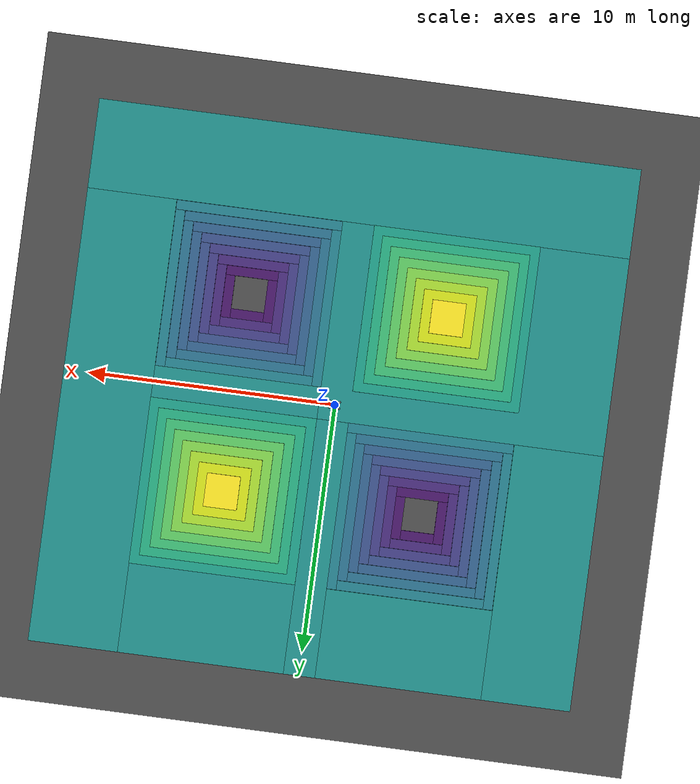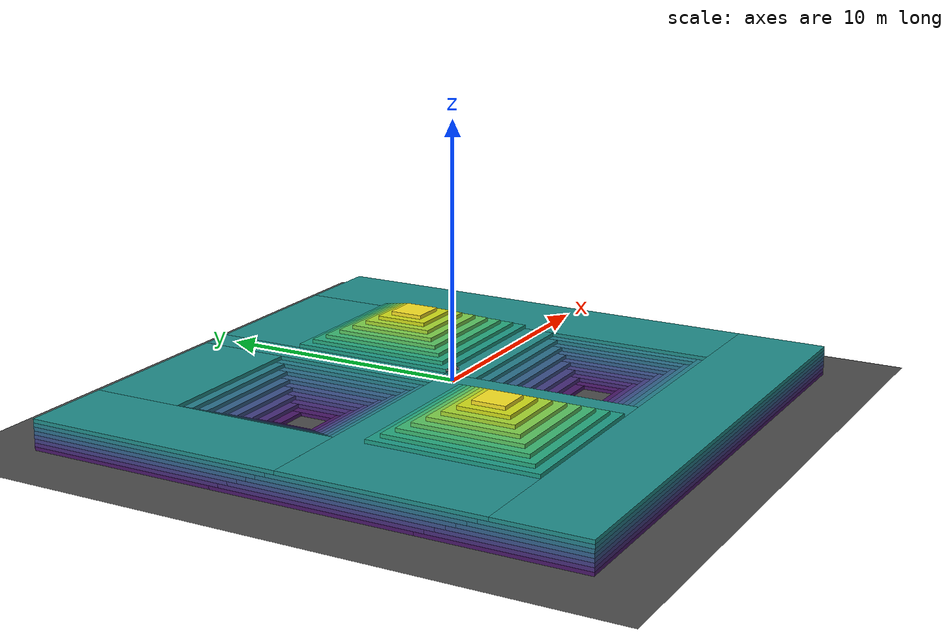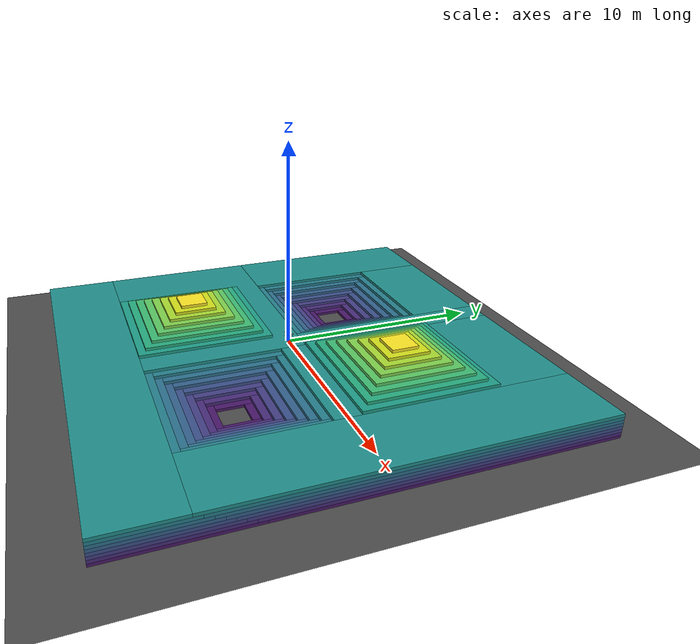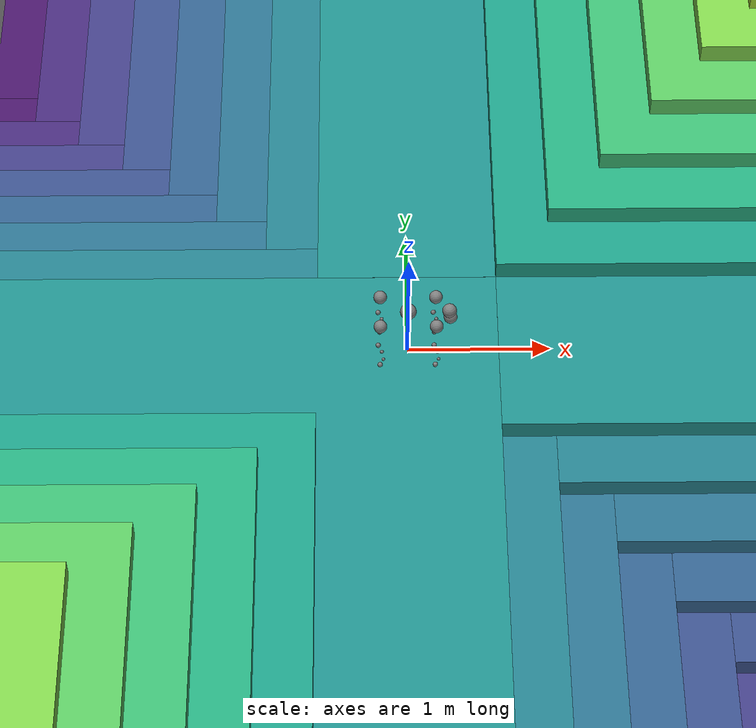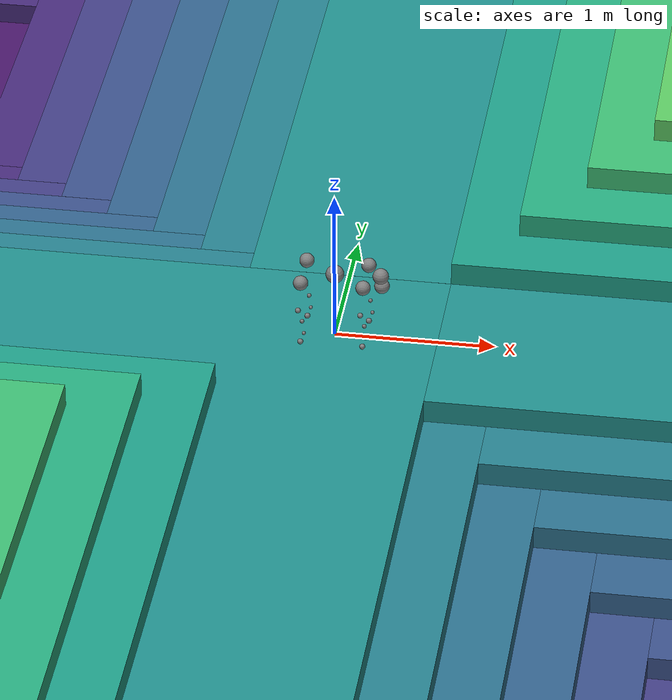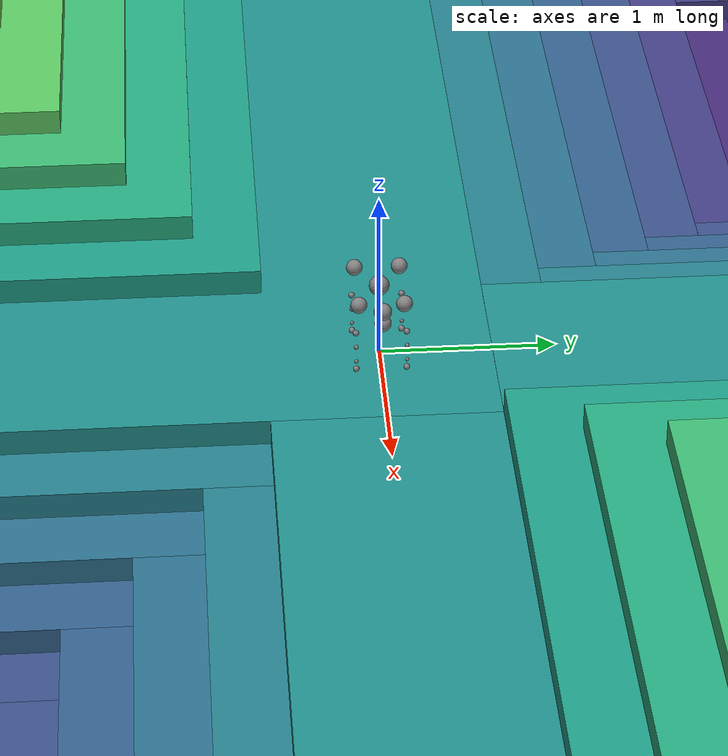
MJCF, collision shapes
<mujoco model="go2 feetonly flat terrain scene">
  <include file="go2_mjx.xml"/>

  <visual>
    <headlight diffuse="0.6 0.6 0.6" ambient="0.3 0.3 0.3" specular="0 0 0"/>
    <rgba haze="0.15 0.25 0.35 1"/>
    <global azimuth="120" elevation="-20"/>
  </visual>

  <default>
    <default class="terrain_box">
      <geom group="2" condim="3" friction="1 0.005 0.0001" type="box"/>
    </default>
  </default>

  <worldbody>
    <body name="terrain_body" pos="0 0 -1.191">
      <geom name="ground_plane" type="plane" size="16.464000000000002 16.464000000000002 0.1" pos="0 0 0" rgba="0.3 0.3 0.3 1"/>
      <geom class="terrain_box" pos="-0.0000 -7.8354 0.0706" size="10.9920 3.1566 0.0706" rgba="0.282 0.090 0.412 1"/>
      <geom class="terrain_box" pos="-3.8296 -0.6730 0.0706" size="7.1624 4.0058 0.0706" rgba="0.282 0.090 0.412 1"/>
      <geom class="terrain_box" pos="7.8354 3.1566 0.0706" size="3.1566 7.8354 0.0706" rgba="0.282 0.090 0.412 1"/>
      <geom class="terrain_box" pos="4.0058 3.8296 0.0706" size="0.6730 7.1624 0.0706" rgba="0.282 0.090 0.412 1"/>
      <geom class="terrain_box" pos="-7.8354 7.1624 0.0706" size="3.1566 3.8296 0.0706" rgba="0.282 0.090 0.412 1"/>
      <geom class="terrain_box" pos="-0.0000 7.1624 0.0706" size="3.3329 3.8296 0.0706" rgba="0.282 0.090 0.412 1"/>
      <geom class="terrain_box" pos="-4.0058 7.8354 0.0706" size="0.6730 3.1566 0.0706" rgba="0.282 0.090 0.412 1"/>
      <geom class="terrain_box" pos="-0.0000 -8.0277 0.2165" size="10.9920 2.9643 0.0753" rgba="0.280 0.171 0.480 1"/>
      <geom class="terrain_box" pos="-4.0219 -1.0575 0.2165" size="6.9702 4.0058 0.0753" rgba="0.280 0.171 0.480 1"/>
      <geom class="terrain_box" pos="8.0277 2.9643 0.2165" size="2.9643 8.0277 0.0753" rgba="0.280 0.171 0.480 1"/>
      <geom class="terrain_box" pos="4.0058 4.0219 0.2165" size="1.0575 6.9702 0.0753" rgba="0.280 0.171 0.480 1"/>
      <geom class="terrain_box" pos="-8.0277 6.9702 0.2165" size="2.9643 4.0219 0.0753" rgba="0.280 0.171 0.480 1"/>
      <geom class="terrain_box" pos="-0.0000 6.9702 0.2165" size="2.9483 4.0219 0.0753" rgba="0.280 0.171 0.480 1"/>
      <geom class="terrain_box" pos="-4.0058 8.0277 0.2165" size="1.0575 2.9643 0.0753" rgba="0.280 0.171 0.480 1"/>
      <geom class="terrain_box" pos="-0.0000 -8.2200 0.3671" size="10.9920 2.7720 0.0753" rgba="0.261 0.247 0.523 1"/>
      <geom class="terrain_box" pos="-4.2141 -1.4421 0.3671" size="6.7779 4.0058 0.0753" rgba="0.261 0.247 0.523 1"/>
      <geom class="terrain_box" pos="8.2200 2.7720 0.3671" size="2.7720 8.2200 0.0753" rgba="0.261 0.247 0.523 1"/>
      <geom class="terrain_box" pos="4.0058 4.2141 0.3671" size="1.4421 6.7779 0.0753" rgba="0.261 0.247 0.523 1"/>
      <geom class="terrain_box" pos="-8.2200 6.7779 0.3671" size="2.7720 4.2141 0.0753" rgba="0.261 0.247 0.523 1"/>
      <geom class="terrain_box" pos="-0.0000 6.7779 0.3671" size="2.5637 4.2141 0.0753" rgba="0.261 0.247 0.523 1"/>
      <geom class="terrain_box" pos="-4.0058 8.2200 0.3671" size="1.4421 2.7720 0.0753" rgba="0.261 0.247 0.523 1"/>
      <geom class="terrain_box" pos="-0.0000 -8.4123 0.5176" size="10.9920 2.5798 0.0753" rgba="0.232 0.318 0.545 1"/>
      <geom class="terrain_box" pos="-4.4064 -1.8267 0.5176" size="6.5856 4.0058 0.0753" rgba="0.232 0.318 0.545 1"/>
      <geom class="terrain_box" pos="8.4123 2.5798 0.5176" size="2.5798 8.4123 0.0753" rgba="0.232 0.318 0.545 1"/>
      <geom class="terrain_box" pos="4.0058 4.4064 0.5176" size="1.8267 6.5856 0.0753" rgba="0.232 0.318 0.545 1"/>
      <geom class="terrain_box" pos="-8.4123 6.5856 0.5176" size="2.5798 4.4064 0.0753" rgba="0.232 0.318 0.545 1"/>
      <geom class="terrain_box" pos="-0.0000 6.5856 0.5176" size="2.1792 4.4064 0.0753" rgba="0.232 0.318 0.545 1"/>
      <geom class="terrain_box" pos="-4.0058 8.4123 0.5176" size="1.8267 2.5798 0.0753" rgba="0.232 0.318 0.545 1"/>
      <geom class="terrain_box" pos="-0.0000 -8.6045 0.6682" size="10.9920 2.3875 0.0753" rgba="0.201 0.384 0.554 1"/>
      <geom class="terrain_box" pos="-4.5987 -2.2112 0.6682" size="6.3933 4.0058 0.0753" rgba="0.201 0.384 0.554 1"/>
      <geom class="terrain_box" pos="8.6045 2.3875 0.6682" size="2.3875 8.6045 0.0753" rgba="0.201 0.384 0.554 1"/>
      <geom class="terrain_box" pos="4.0058 4.5987 0.6682" size="2.2112 6.3933 0.0753" rgba="0.201 0.384 0.554 1"/>
      <geom class="terrain_box" pos="-8.6045 6.3933 0.6682" size="2.3875 4.5987 0.0753" rgba="0.201 0.384 0.554 1"/>
      <geom class="terrain_box" pos="-0.0000 6.3933 0.6682" size="1.7946 4.5987 0.0753" rgba="0.201 0.384 0.554 1"/>
      <geom class="terrain_box" pos="-4.0058 8.6045 0.6682" size="2.2112 2.3875 0.0753" rgba="0.201 0.384 0.554 1"/>
      <geom class="terrain_box" pos="-0.0000 -8.7968 0.8188" size="10.9920 2.1952 0.0753" rgba="0.174 0.445 0.558 1"/>
      <geom class="terrain_box" pos="-4.7910 -2.5958 0.8188" size="6.2010 4.0058 0.0753" rgba="0.174 0.445 0.558 1"/>
      <geom class="terrain_box" pos="8.7968 2.1952 0.8188" size="2.1952 8.7968 0.0753" rgba="0.174 0.445 0.558 1"/>
      <geom class="terrain_box" pos="4.0058 4.7910 0.8188" size="2.5958 6.2010 0.0753" rgba="0.174 0.445 0.558 1"/>
      <geom class="terrain_box" pos="-8.7968 6.2010 0.8188" size="2.1952 4.7910 0.0753" rgba="0.174 0.445 0.558 1"/>
      <geom class="terrain_box" pos="-0.0000 6.2010 0.8188" size="1.4101 4.7910 0.0753" rgba="0.174 0.445 0.558 1"/>
      <geom class="terrain_box" pos="-4.0058 8.7968 0.8188" size="2.5958 2.1952 0.0753" rgba="0.174 0.445 0.558 1"/>
      <geom class="terrain_box" pos="-0.0000 -8.9891 0.9694" size="10.9920 2.0029 0.0753" rgba="0.150 0.504 0.557 1"/>
      <geom class="terrain_box" pos="-4.9833 -2.9803 0.9694" size="6.0088 4.0058 0.0753" rgba="0.150 0.504 0.557 1"/>
      <geom class="terrain_box" pos="8.9891 2.0029 0.9694" size="2.0029 8.9891 0.0753" rgba="0.150 0.504 0.557 1"/>
      <geom class="terrain_box" pos="4.0058 4.9833 0.9694" size="2.9803 6.0088 0.0753" rgba="0.150 0.504 0.557 1"/>
      <geom class="terrain_box" pos="-8.9891 6.0088 0.9694" size="2.0029 4.9833 0.0753" rgba="0.150 0.504 0.557 1"/>
      <geom class="terrain_box" pos="-0.0000 6.0088 0.9694" size="1.0255 4.9833 0.0753" rgba="0.150 0.504 0.557 1"/>
      <geom class="terrain_box" pos="-4.0058 8.9891 0.9694" size="2.9803 2.0029 0.0753" rgba="0.150 0.504 0.557 1"/>
      <geom class="terrain_box" pos="-0.0000 -9.1814 1.1200" size="10.9920 1.8106 0.0753" rgba="0.129 0.563 0.551 1"/>
      <geom class="terrain_box" pos="-5.1755 -3.3649 1.1200" size="5.8165 4.0058 0.0753" rgba="0.129 0.563 0.551 1"/>
      <geom class="terrain_box" pos="9.1814 1.8106 1.1200" size="1.8106 9.1814 0.0753" rgba="0.129 0.563 0.551 1"/>
      <geom class="terrain_box" pos="4.0058 5.1755 1.1200" size="3.3649 5.8165 0.0753" rgba="0.129 0.563 0.551 1"/>
      <geom class="terrain_box" pos="-9.1814 5.8165 1.1200" size="1.8106 5.1755 0.0753" rgba="0.129 0.563 0.551 1"/>
      <geom class="terrain_box" pos="-0.0000 5.8165 1.1200" size="0.6409 5.1755 0.0753" rgba="0.129 0.563 0.551 1"/>
      <geom class="terrain_box" pos="-4.0058 9.1814 1.1200" size="3.3649 1.8106 0.0753" rgba="0.129 0.563 0.551 1"/>
      <geom class="terrain_box" pos="-4.0058 -4.0058 1.2706" size="3.3649 3.3649 0.0753" rgba="0.120 0.622 0.535 1"/>
      <geom class="terrain_box" pos="4.0058 4.0058 1.2706" size="3.3649 3.3649 0.0753" rgba="0.120 0.622 0.535 1"/>
      <geom class="terrain_box" pos="-4.0058 -4.0058 1.4212" size="2.9803 2.9803 0.0753" rgba="0.154 0.680 0.504 1"/>
      <geom class="terrain_box" pos="4.0058 4.0058 1.4212" size="2.9803 2.9803 0.0753" rgba="0.154 0.680 0.504 1"/>
      <geom class="terrain_box" pos="-4.0058 -4.0058 1.5718" size="2.5958 2.5958 0.0753" rgba="0.239 0.736 0.456 1"/>
      <geom class="terrain_box" pos="4.0058 4.0058 1.5718" size="2.5958 2.5958 0.0753" rgba="0.239 0.736 0.456 1"/>
      <geom class="terrain_box" pos="-4.0058 -4.0058 1.7224" size="2.2112 2.2112 0.0753" rgba="0.361 0.786 0.388 1"/>
      <geom class="terrain_box" pos="4.0058 4.0058 1.7224" size="2.2112 2.2112 0.0753" rgba="0.361 0.786 0.388 1"/>
      <geom class="terrain_box" pos="-4.0058 -4.0058 1.8729" size="1.8267 1.8267 0.0753" rgba="0.506 0.829 0.300 1"/>
      <geom class="terrain_box" pos="4.0058 4.0058 1.8729" size="1.8267 1.8267 0.0753" rgba="0.506 0.829 0.300 1"/>
      <geom class="terrain_box" pos="-4.0058 -4.0058 2.0235" size="1.4421 1.4421 0.0753" rgba="0.668 0.862 0.196 1"/>
      <geom class="terrain_box" pos="4.0058 4.0058 2.0235" size="1.4421 1.4421 0.0753" rgba="0.668 0.862 0.196 1"/>
      <geom class="terrain_box" pos="-4.0058 -4.0058 2.1741" size="1.0575 1.0575 0.0753" rgba="0.835 0.886 0.103 1"/>
      <geom class="terrain_box" pos="4.0058 4.0058 2.1741" size="1.0575 1.0575 0.0753" rgba="0.835 0.886 0.103 1"/>
      <geom class="terrain_box" pos="-4.0058 -4.0058 2.3247" size="0.6730 0.6730 0.0753" rgba="0.993 0.906 0.144 1"/>
      <geom class="terrain_box" pos="4.0058 4.0058 2.3247" size="0.6730 0.6730 0.0753" rgba="0.993 0.906 0.144 1"/>
    </body>
  </worldbody>

  <keyframe>
    <key name="home"
      qpos="
      0 0 0.278
      1 0 0 0
      0.1 0.9 -1.8
      -0.1 0.9 -1.8
      0.1 0.9 -1.8
      -0.1 0.9 -1.8"
      ctrl="0.1 0.9 -1.8 -0.1 0.9 -1.8 0.1 0.9 -1.8 -0.1 0.9 -1.8"/>
  </keyframe>

</mujoco>

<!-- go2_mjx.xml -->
<mujoco model="go2">
  <compiler angle="radian" autolimits="true"/>

  <option iterations="1" ls_iterations="5" timestep="0.004" integrator="Euler">
    <flag eulerdamp="disable"/>
  </option>

  <custom>
    <numeric data="30" name="max_contact_points"/>
    <numeric data="12" name="max_geom_pairs"/>
  </custom>

  <default>
    <default class="go2">
      <geom condim="1"/>
      <joint axis="0 1 0" damping="2" armature="0.01"/>
      <general forcerange="-24 24" biastype="affine" gainprm="80 0 0" biasprm="0 -80 -1"/>

      <default class="abduction">
        <joint axis="1 0 0" range="-1.0472 1.0472"/>
        <general ctrlrange="-0.9472 0.9472"/>
      </default>
      <default class="hip">
        <joint range="-1.5708 3.4907"/>
        <general ctrlrange="-1.4 2.5"/>
      </default>
      <default class="knee">
        <joint range="-2.7227 -0.83776"/>
        <general ctrlrange="-2.6227 -0.84776"/>
      </default>
      <default class="visual">
        <geom type="mesh" contype="0" conaffinity="0" group="0"/>
      </default>
      <default class="go2foot">
        <site pos="0 0 -0.213" type="sphere" size="0.023" group="5"/>
        <geom rgba="0.231373 0.380392 0.705882 1"/>
      </default>
      <default class="collision">
        <geom group="3"/>
        <default class="foot">
          <geom type="sphere" size="0.0175" pos="-0.002 0 -0.213" solimp="0.9 .95 0.023" condim="3"/>
        </default>
      </default>
    </default>
  </default>

  <asset>
    <material name="metal" rgba=".9 .95 .95 1"/>
    <material name="black" rgba="0 0 0 1"/>
    <material name="white" rgba="1 1 1 1"/>
    <material name="gray" rgba="0.671705 0.692426 0.774270 1"/>

    <mesh file="assets/base_0.obj"/>
    <mesh file="assets/base_1.obj"/>
    <mesh file="assets/base_2.obj"/>
    <mesh file="assets/base_3.obj"/>
    <mesh file="assets/base_4.obj"/>
    <mesh file="assets/hip_0.obj"/>
    <mesh file="assets/hip_1.obj"/>
    <mesh file="assets/thigh_0.obj"/>
    <mesh file="assets/thigh_1.obj"/>
    <mesh file="assets/thigh_mirror_0.obj"/>
    <mesh file="assets/thigh_mirror_1.obj"/>
    <mesh file="assets/calf_0.obj"/>
    <mesh file="assets/calf_1.obj"/>
    <mesh file="assets/calf_mirror_0.obj"/>
    <mesh file="assets/calf_mirror_1.obj"/>
    <mesh file="assets/foot.obj"/>
  </asset>

  <worldbody>
    <light name="spotlight" mode="targetbodycom" target="base" pos="3 0 4"/>
    <body name="base" pos="0 0 0.445" childclass="go2">
      <camera name="track" pos="0.846 -1.465 0.916" xyaxes="0.866 0.500 0.000 -0.171 0.296 0.940" mode="trackcom"/>
      <camera name="head_camera" pos="0.32 0 0.04" xyaxes="0 -1 0 0 0 1"/>
      <inertial pos="0.021112 0 -0.005366" quat="-0.000543471 0.713435 -0.00173769 0.700719" mass="6.921"
        diaginertia="0.107027 0.0980771 0.0244531"/>
      <freejoint/>
      <geom mesh="base_0" material="black" class="visual"/>
      <geom mesh="base_1" material="black" class="visual"/>
      <geom mesh="base_2" material="black" class="visual"/>
      <geom mesh="base_3" material="white" class="visual"/>
      <geom mesh="base_4" material="gray" class="visual"/>
      <geom name="base_collision_0" size="0.057 0.04675 0.057" class="collision"/>
      <geom name="base_collision_1" size="0.05 0.045" pos="0.285 0 0.01" class="collision"/>
      <geom name="base_collision_2" size="0.047" pos="0.293 0 -0.06" class="collision"/>
      <site name="imu" pos="-0.02557 0 0.04232"/>
      <site name="lidar" pos="0.295 0 -0.075" quat="0.05 0 1 0" rgba="1 0 0 1" size="0.005" group="5"/>
      <body name="FL_hip" pos="0.1934 0.0465 0">
        <inertial pos="-0.0054 0.00194 -0.000105" quat="0.497014 0.499245 0.505462 0.498237" mass="0.678"
          diaginertia="0.00088403 0.000596003 0.000479967"/>
        <joint name="FL_hip_joint" class="abduction"/>
        <geom mesh="hip_0" material="metal" class="visual"/>
        <geom mesh="hip_1" material="gray" class="visual"/>
        <geom name="fl_hip_0" size="0.046 0.02" pos="0 0.08 0" quat="1 1 0 0" class="collision"/>
        <body name="FL_thigh" pos="0 0.0955 0">
          <inertial pos="-0.00374 -0.0223 -0.0327" quat="0.829533 0.0847635 -0.0200632 0.551623" mass="1.152"
            diaginertia="0.00594973 0.00584149 0.000878787"/>
          <joint name="FL_thigh_joint" class="hip"/>
          <geom mesh="thigh_0" material="metal" class="visual"/>
          <geom mesh="thigh_1" material="gray" class="visual"/>
          <geom name="fl_thigh_0" size="0.017 0.01225 0.017" pos="-0.015 0 -0.1955" quat="0.707107 0 0.707107 0" class="collision"/>
          <body name="FL_calf" pos="0 0 -0.213">
            <inertial pos="0.00629595 -0.000622121 -0.141417" quat="0.710672 0.00154099 -0.00450087 0.703508"
              mass="0.241352" diaginertia="0.0014901 0.00146356 5.31397e-05"/>
            <joint name="FL_calf_joint" class="knee"/>
            <geom mesh="calf_0" material="gray" class="visual"/>
            <geom mesh="calf_1" material="black" class="visual"/>
            <geom name="fl_calf_0" size="0.012 0.06" pos="0.008 0 -0.06" quat="0.994493 0 -0.104807 0" class="collision"/>
            <geom name="fl_calf_1" size="0.011 0.0325" pos="0.02 0 -0.148" quat="0.999688 0 0.0249974 0" class="collision"/>
            <geom pos="0 0 -0.213" mesh="foot" class="visual" material="black"/>
            <geom name="FL_foot" class="foot"/>
            <site name="FL" class="go2foot"/>
          </body>
        </body>
      </body>
      <body name="FR_hip" pos="0.1934 -0.0465 0">
        <inertial pos="-0.0054 -0.00194 -0.000105" quat="0.498237 0.505462 0.499245 0.497014" mass="0.678"
          diaginertia="0.00088403 0.000596003 0.000479967"/>
        <joint name="FR_hip_joint" class="abduction"/>
        <geom mesh="hip_0" material="metal" class="visual" quat="4.63268e-05 1 0 0"/>
        <geom mesh="hip_1" material="gray" class="visual" quat="4.63268e-05 1 0 0"/>
        <geom name="fr_hip_0" size="0.046 0.02" pos="0 -0.08 0" quat="0.707107 0.707107 0 0" class="collision"/>
        <body name="FR_thigh" pos="0 -0.0955 0">
          <inertial pos="-0.00374 0.0223 -0.0327" quat="0.551623 -0.0200632 0.0847635 0.829533" mass="1.152"
            diaginertia="0.00594973 0.00584149 0.000878787"/>
          <joint name="FR_thigh_joint" class="hip"/>
          <geom mesh="thigh_mirror_0" material="metal" class="visual"/>
          <geom mesh="thigh_mirror_1" material="gray" class="visual"/>
          <geom name="fr_thigh_0" size="0.017 0.01225 0.017" pos="-0.015 0 -0.1955" quat="0.707107 0 0.707107 0" class="collision"/>
          <body name="FR_calf" pos="0 0 -0.213">
            <inertial pos="0.00629595 0.000622121 -0.141417" quat="0.703508 -0.00450087 0.00154099 0.710672"
              mass="0.241352" diaginertia="0.0014901 0.00146356 5.31397e-05"/>
            <joint name="FR_calf_joint" class="knee"/>
            <geom mesh="calf_mirror_0" material="gray" class="visual"/>
            <geom mesh="calf_mirror_1" material="black" class="visual"/>
            <geom name="fr_calf_0" size="0.013 0.06" pos="0.01 0 -0.06" quat="0.995004 0 -0.0998334 0" class="collision"/>
            <geom name="fr_calf_1" size="0.011 0.0325" pos="0.02 0 -0.148" quat="0.999688 0 0.0249974 0" class="collision"/>
            <geom pos="0 0 -0.213" mesh="foot" class="visual" material="black"/>
            <geom name="FR_foot" class="foot"/>
            <site name="FR" class="go2foot"/>
          </body>
        </body>
      </body>
      <body name="RL_hip" pos="-0.1934 0.0465 0">
        <inertial pos="0.0054 0.00194 -0.000105" quat="0.505462 0.498237 0.497014 0.499245" mass="0.678"
          diaginertia="0.00088403 0.000596003 0.000479967"/>
        <joint name="RL_hip_joint" class="abduction"/>
        <geom mesh="hip_0" material="metal" class="visual" quat="4.63268e-05 0 1 0"/>
        <geom mesh="hip_1" material="gray" class="visual" quat="4.63268e-05 0 1 0"/>
        <geom name="rl_hip_0" size="0.046 0.02" pos="0 0.08 0" quat="0.707107 0.707107 0 0" class="collision"/>
        <body name="RL_thigh" pos="0 0.0955 0">
          <inertial pos="-0.00374 -0.0223 -0.0327" quat="0.829533 0.0847635 -0.0200632 0.551623" mass="1.152"
            diaginertia="0.00594973 0.00584149 0.000878787"/>
          <joint name="RL_thigh_joint" class="hip"/>
          <geom mesh="thigh_0" material="metal" class="visual"/>
          <geom mesh="thigh_1" material="gray" class="visual"/>
          <geom name="rl_thigh_0" size="0.017 0.01225 0.017" pos="-0.015 0 -0.1955" quat="0.707107 0 0.707107 0" class="collision"/>
          <body name="RL_calf" pos="0 0 -0.213">
            <inertial pos="0.00629595 -0.000622121 -0.141417" quat="0.710672 0.00154099 -0.00450087 0.703508"
              mass="0.241352" diaginertia="0.0014901 0.00146356 5.31397e-05"/>
            <joint name="RL_calf_joint" class="knee"/>
            <geom mesh="calf_0" material="gray" class="visual"/>
            <geom mesh="calf_1" material="black" class="visual"/>
            <geom name="rl_calf_0" size="0.013 0.06" pos="0.01 0 -0.06" quat="0.995004 0 -0.0998334 0" class="collision"/>
            <geom name="rl_calf_1" size="0.011 0.0325" pos="0.02 0 -0.148" quat="0.999688 0 0.0249974 0" class="collision"/>
            <geom pos="0 0 -0.213" mesh="foot" class="visual" material="black"/>
            <geom name="RL_foot" class="foot"/>
            <site name="RL" class="go2foot"/>
          </body>
        </body>
      </body>
      <body name="RR_hip" pos="-0.1934 -0.0465 0">
        <inertial pos="0.0054 -0.00194 -0.000105" quat="0.499245 0.497014 0.498237 0.505462" mass="0.678"
          diaginertia="0.00088403 0.000596003 0.000479967"/>
        <joint name="RR_hip_joint" class="abduction"/>
        <geom mesh="hip_0" material="metal" class="visual" quat="2.14617e-09 4.63268e-05 4.63268e-05 -1"/>
        <geom mesh="hip_1" material="gray" class="visual" quat="2.14617e-09 4.63268e-05 4.63268e-05 -1"/>
        <geom name="rr_hip_0" size="0.046 0.02" pos="0 -0.08 0" quat="0.707107 0.707107 0 0" class="collision"/>
        <body name="RR_thigh" pos="0 -0.0955 0">
          <inertial pos="-0.00374 0.0223 -0.0327" quat="0.551623 -0.0200632 0.0847635 0.829533" mass="1.152"
            diaginertia="0.00594973 0.00584149 0.000878787"/>
          <joint name="RR_thigh_joint" class="hip"/>
          <geom mesh="thigh_mirror_0" material="metal" class="visual"/>
          <geom mesh="thigh_mirror_1" material="gray" class="visual"/>
          <geom name="rr_thigh_0" size="0.017 0.01225 0.017" pos="-0.015 0 -0.1955" quat="0.707107 0 0.707107 0" class="collision"/>
          <body name="RR_calf" pos="0 0 -0.213">
            <inertial pos="0.00629595 0.000622121 -0.141417" quat="0.703508 -0.00450087 0.00154099 0.710672"
              mass="0.241352" diaginertia="0.0014901 0.00146356 5.31397e-05"/>
            <joint name="RR_calf_joint" class="knee"/>
            <geom mesh="calf_mirror_0" material="gray" class="visual"/>
            <geom mesh="calf_mirror_1" material="black" class="visual"/>
            <geom name="rr_calf_0" size="0.013 0.06" pos="0.01 0 -0.06" quat="0.995004 0 -0.0998334 0" class="collision"/>
            <geom name="rr_calf_1" size="0.011 0.0325" pos="0.02 0 -0.148" quat="0.999688 0 0.0249974 0" class="collision"/>
            <geom pos="0 0 -0.213" mesh="foot" class="visual" material="black"/>
            <geom name="RR_foot" class="foot"/>
            <site name="RR" class="go2foot"/>
          </body>
        </body>
      </body>
    </body>
  </worldbody>

  <actuator>
    <general class="abduction" name="FL_hip" joint="FL_hip_joint"/>
    <general class="hip" name="FL_thigh" joint="FL_thigh_joint"/>
    <general class="knee" name="FL_calf" joint="FL_calf_joint"/>
    <general class="abduction" name="FR_hip" joint="FR_hip_joint"/>
    <general class="hip" name="FR_thigh" joint="FR_thigh_joint"/>
    <general class="knee" name="FR_calf" joint="FR_calf_joint"/>
    <general class="abduction" name="RL_hip" joint="RL_hip_joint"/>
    <general class="hip" name="RL_thigh" joint="RL_thigh_joint"/>
    <general class="knee" name="RL_calf" joint="RL_calf_joint"/>
    <general class="abduction" name="RR_hip" joint="RR_hip_joint"/>
    <general class="hip" name="RR_thigh" joint="RR_thigh_joint"/>
    <general class="knee" name="RR_calf" joint="RR_calf_joint"/>
  </actuator>

  <sensor>
    <jointpos joint="FL_hip_joint" name="abduction_front_left_pos"/>
    <jointpos joint="FL_thigh_joint" name="hip_front_left_pos"/>
    <jointpos joint="FL_calf_joint" name="knee_front_left_pos"/>
    <jointpos joint="RL_hip_joint" name="abduction_hind_left_pos"/>
    <jointpos joint="RL_thigh_joint" name="hip_hind_left_pos"/>
    <jointpos joint="RL_calf_joint" name="knee_hind_left_pos"/>
    <jointpos joint="FR_hip_joint" name="abduction_front_right_pos"/>
    <jointpos joint="FR_thigh_joint" name="hip_front_right_pos"/>
    <jointpos joint="FR_calf_joint" name="knee_front_right_pos"/>
    <jointpos joint="RR_hip_joint" name="abduction_hind_right_pos"/>
    <jointpos joint="RR_thigh_joint" name="hip_hind_right_pos"/>
    <jointpos joint="RR_calf_joint" name="knee_hind_right_pos"/>
    <jointvel joint="FL_hip_joint" name="abduction_front_left_vel"/>
    <jointvel joint="FL_thigh_joint" name="hip_front_left_vel"/>
    <jointvel joint="FL_calf_joint" name="knee_front_left_vel"/>
    <jointvel joint="RL_hip_joint" name="abduction_hind_left_vel"/>
    <jointvel joint="RL_thigh_joint" name="hip_hind_left_vel"/>
    <jointvel joint="RL_calf_joint" name="knee_hind_left_vel"/>
    <jointvel joint="FR_hip_joint" name="abduction_front_right_vel"/>
    <jointvel joint="FR_thigh_joint" name="hip_front_right_vel"/>
    <jointvel joint="FR_calf_joint" name="knee_front_right_vel"/>
    <jointvel joint="RR_hip_joint" name="abduction_hind_right_vel"/>
    <jointvel joint="RR_thigh_joint" name="hip_hind_right_vel"/>
    <jointvel joint="RR_calf_joint" name="knee_hind_right_vel"/>

    <gyro site="imu" name="gyro"/>
    <accelerometer site="imu" name="accelerometer"/>
    <velocimeter site="imu" name="local_linvel"/>
    <framezaxis objtype="site" objname="imu" name="upvector"/>
    <framequat objtype="site" objname="imu" name="orientation"/>
    <framepos objtype="site" objname="imu" name="global_position"/>
    <framelinvel objtype="site" objname="imu" name="global_linvel"/>
    <frameangvel objtype="site" objname="imu" name="global_angvel"/>

    <framelinvel objtype="site" objname="FR" name="FR_global_linvel"/>
    <framelinvel objtype="site" objname="FL" name="FL_global_linvel"/>
    <framelinvel objtype="site" objname="RR" name="RR_global_linvel"/>
    <framelinvel objtype="site" objname="RL" name="RL_global_linvel"/>

    <framepos objtype="site" objname="FR" name="FR_pos" reftype="site" refname="imu"/>
    <framepos objtype="site" objname="FL" name="FL_pos" reftype="site" refname="imu"/>
    <framepos objtype="site" objname="RR" name="RR_pos" reftype="site" refname="imu"/>
    <framepos objtype="site" objname="RL" name="RL_pos" reftype="site" refname="imu"/>
  </sensor>
</mujoco>
